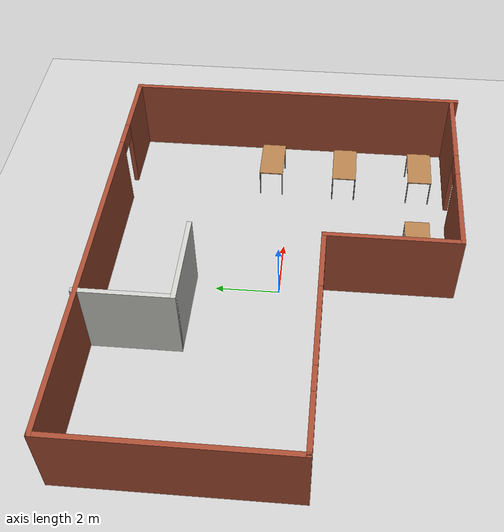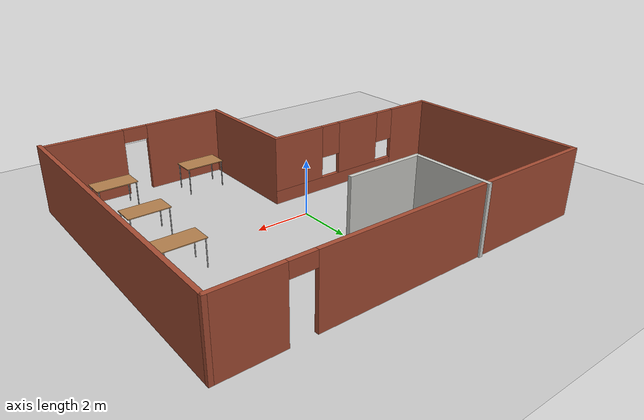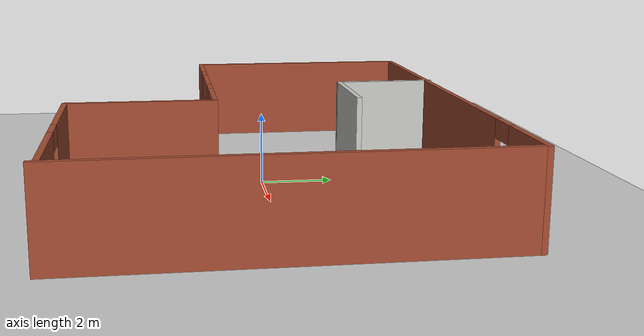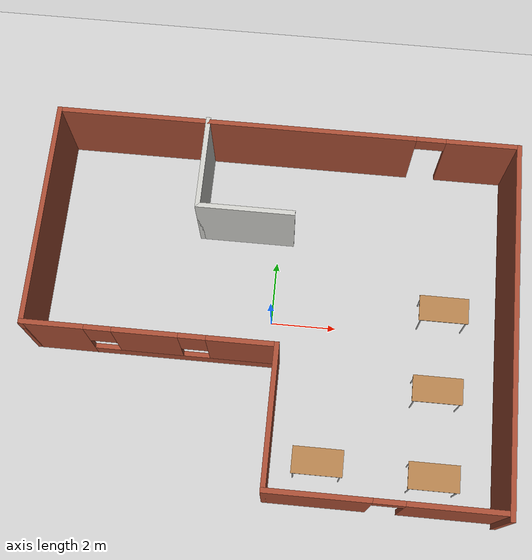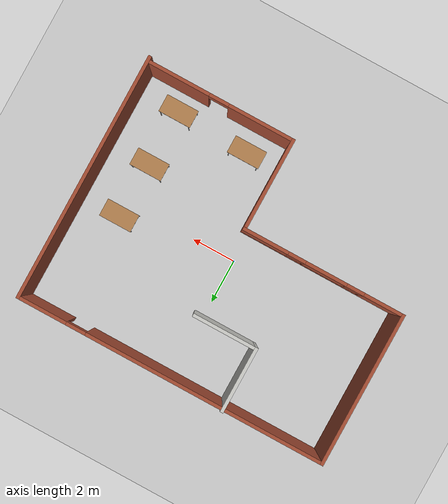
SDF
<sdf version="1.6">
 <world name="default">
  <plugin name="hello" filename="libhello.so"/>
  <light name="sun" type="directional">
   <pose>0 0 10 0 -0 0</pose>
   <diffuse>0.8 0.8 0.8 1</diffuse>
   <specular>0.2 0.2 0.2 1</specular>
   <attenuation>
    <range>1000</range>
    <constant>0.9</constant>
    <linear>0.01</linear>
    <quadratic>0.001</quadratic>
   </attenuation>
   <direction>-0.5 0.1 -0.9</direction>
  </light>
  <model name="ground_plane">
   <static>1</static>
   <link name="link">
    <collision name="collision">
     <geometry><plane><normal>0 0 1</normal><size>100 100</size></plane></geometry>
     <surface><friction><ode><mu>100</mu><mu2>50</mu2></ode></friction></surface>
    </collision>
    <visual name="visual">
     <cast_shadows>0</cast_shadows>
     <geometry><plane><normal>0 0 1</normal><size>100 100</size></plane></geometry>
     <material>
      <script><uri>file://media/materials/scripts/gazebo.material</uri><name>Gazebo/Grey</name></script>
     </material>
    </visual>
   </link>
  </model>
  <gravity>0 0 -9.8</gravity>
  <magnetic_field>6e-06 2.3e-05 -4.2e-05</magnetic_field>
  <atmosphere type="adiabatic"/>
  <physics name="default_physics" default="0" type="ode">
   <max_step_size>0.001</max_step_size>
   <real_time_factor>1</real_time_factor>
   <real_time_update_rate>1000</real_time_update_rate>
  </physics>
  <scene><ambient>0.4 0.4 0.4 1</ambient><background>0.7 0.7 0.7 1</background><shadows>1</shadows></scene>
  <spherical_coordinates>
   <surface_model>EARTH_WGS84</surface_model>
   <latitude_deg>0</latitude_deg>
   <longitude_deg>0</longitude_deg>
   <elevation>0</elevation>
   <heading_deg>0</heading_deg>
  </spherical_coordinates>
  <model name="Untitled">
   <link name="Wall_10">
    <collision name="Wall_10_Collision">
     <geometry><box><size>7 0.15 2.5</size></box></geometry>
     <pose>0 0 1.25 0 -0 0</pose>
    </collision>
    <visual name="Wall_10_Visual">
     <pose>0 0 1.25 0 -0 0</pose>
     <geometry><box><size>7 0.15 2.5</size></box></geometry>
     <material>
      <script><uri>file://media/materials/scripts/gazebo.material</uri><name>Gazebo/Bricks</name></script>
      <ambient>1 1 1 1</ambient>
     </material>
     <meta><layer>0</layer></meta>
    </visual>
    <pose>-7.05 2.09213 0 0 0 -1.5708</pose>
   </link>
   <link name="Wall_11">
    <pose>-3.375 -1.33287 0 0 -0 0</pose>
    <visual name="Wall_11_Visual_0">
     <pose>-2.80947 0 1.25 0 -0 0</pose>
     <geometry><box><size>1.88106 0.15 2.5</size></box></geometry>
     <material>
      <script><uri>file://media/materials/scripts/gazebo.material</uri><name>Gazebo/Bricks</name></script>
      <ambient>1 1 1 1</ambient>
     </material>
     <meta><layer>0</layer></meta>
    </visual>
    <collision name="Wall_11_Collision_0">
     <geometry><box><size>1.88106 0.15 2.5</size></box></geometry>
     <pose>-2.80947 0 1.25 0 -0 0</pose>
    </collision>
    <visual name="Wall_11_Visual_1">
     <pose>0.94053 0 0.25 0 -0 0</pose>
     <geometry><box><size>5.61894 0.15 0.5</size></box></geometry>
     <material>
      <script><uri>file://media/materials/scripts/gazebo.material</uri><name>Gazebo/Bricks</name></script>
      <ambient>1 1 1 1</ambient>
     </material>
     <meta><layer>0</layer></meta>
    </visual>
    <collision name="Wall_11_Collision_1">
     <geometry><box><size>5.61894 0.15 0.5</size></box></geometry>
     <pose>0.94053 0 0.25 0 -0 0</pose>
    </collision>
    <visual name="Wall_11_Visual_2">
     <pose>-0.113678 0 1.5 0 -0 0</pose>
     <geometry><box><size>1.91052 0.15 2</size></box></geometry>
     <material>
      <script><uri>file://media/materials/scripts/gazebo.material</uri><name>Gazebo/Bricks</name></script>
      <ambient>1 1 1 1</ambient>
     </material>
     <meta><layer>0</layer></meta>
    </visual>
    <collision name="Wall_11_Collision_2">
     <geometry><box><size>1.91052 0.15 2</size></box></geometry>
     <pose>-0.113678 0 1.5 0 -0 0</pose>
    </collision>
    <visual name="Wall_11_Visual_3">
     <pose>2.69579 0 1.5 0 -0 0</pose>
     <geometry><box><size>2.10842 0.15 2</size></box></geometry>
     <material>
      <script><uri>file://media/materials/scripts/gazebo.material</uri><name>Gazebo/Bricks</name></script>
      <ambient>1 1 1 1</ambient>
     </material>
     <meta><layer>0</layer></meta>
    </visual>
    <collision name="Wall_11_Collision_3">
     <geometry><box><size>2.10842 0.15 2</size></box></geometry>
     <pose>2.69579 0 1.5 0 -0 0</pose>
    </collision>
    <visual name="Wall_11_Visual_4">
     <pose>-1.46894 0 1.9 0 -0 0</pose>
     <geometry><box><size>0.8 0.15 1.2</size></box></geometry>
     <material>
      <script><uri>file://media/materials/scripts/gazebo.material</uri><name>Gazebo/Bricks</name></script>
      <ambient>1 1 1 1</ambient>
     </material>
     <meta><layer>0</layer></meta>
    </visual>
    <collision name="Wall_11_Collision_4">
     <geometry><box><size>0.8 0.15 1.2</size></box></geometry>
     <pose>-1.46894 0 1.9 0 -0 0</pose>
    </collision>
    <visual name="Wall_11_Visual_5">
     <pose>1.24158 0 1.9 0 -0 0</pose>
     <geometry><box><size>0.8 0.15 1.2</size></box></geometry>
     <material>
      <script><uri>file://media/materials/scripts/gazebo.material</uri><name>Gazebo/Bricks</name></script>
      <ambient>1 1 1 1</ambient>
     </material>
     <meta><layer>0</layer></meta>
    </visual>
    <collision name="Wall_11_Collision_5">
     <geometry><box><size>0.8 0.15 1.2</size></box></geometry>
     <pose>1.24158 0 1.9 0 -0 0</pose>
    </collision>
   </link>
   <link name="Wall_12">
    <collision name="Wall_12_Collision">
     <geometry><box><size>4.25 0.15 2.5</size></box></geometry>
     <pose>0 0 1.25 0 -0 0</pose>
    </collision>
    <visual name="Wall_12_Visual">
     <pose>0 0 1.25 0 -0 0</pose>
     <geometry><box><size>4.25 0.15 2.5</size></box></geometry>
     <material>
      <script><uri>file://media/materials/scripts/gazebo.material</uri><name>Gazebo/Bricks</name></script>
      <ambient>1 1 1 1</ambient>
     </material>
     <meta><layer>0</layer></meta>
    </visual>
    <pose>0.3 -3.38287 0 0 0 -1.5708</pose>
   </link>
   <link name="Wall_13">
    <pose>3.6 -5.43287 0 0 -0 0</pose>
    <visual name="Wall_13_Visual_0">
     <pose>-1.84618 0 1.25 0 -0 0</pose>
     <geometry><box><size>3.05764 0.15 2.5</size></box></geometry>
     <material>
      <script><uri>file://media/materials/scripts/gazebo.material</uri><name>Gazebo/Bricks</name></script>
      <ambient>1 1 1 1</ambient>
     </material>
     <meta><layer>0</layer></meta>
    </visual>
    <collision name="Wall_13_Collision_0">
     <geometry><box><size>3.05764 0.15 2.5</size></box></geometry>
     <pose>-1.84618 0 1.25 0 -0 0</pose>
    </collision>
    <visual name="Wall_13_Visual_1">
     <pose>1.97882 0 1.25 0 -0 0</pose>
     <geometry><box><size>2.79236 0.15 2.5</size></box></geometry>
     <material>
      <script><uri>file://media/materials/scripts/gazebo.material</uri><name>Gazebo/Bricks</name></script>
      <ambient>1 1 1 1</ambient>
     </material>
     <meta><layer>0</layer></meta>
    </visual>
    <collision name="Wall_13_Collision_1">
     <geometry><box><size>2.79236 0.15 2.5</size></box></geometry>
     <pose>1.97882 0 1.25 0 -0 0</pose>
    </collision>
    <visual name="Wall_13_Visual_2">
     <pose>0.132642 0 2.25 0 -0 0</pose>
     <geometry><box><size>0.9 0.15 0.5</size></box></geometry>
     <material>
      <script><uri>file://media/materials/scripts/gazebo.material</uri><name>Gazebo/Bricks</name></script>
      <ambient>1 1 1 1</ambient>
     </material>
     <meta><layer>0</layer></meta>
    </visual>
    <collision name="Wall_13_Collision_2">
     <geometry><box><size>0.9 0.15 0.5</size></box></geometry>
     <pose>0.132642 0 2.25 0 -0 0</pose>
    </collision>
   </link>
   <link name="Wall_15">
    <collision name="Wall_15_Collision">
     <geometry><box><size>3 0.15 2.5</size></box></geometry>
     <pose>0 0 1.25 0 -0 0</pose>
    </collision>
    <visual name="Wall_15_Visual">
     <pose>0 0 1.25 0 -0 0</pose>
     <geometry><box><size>3 0.15 2.5</size></box></geometry>
     <material>
      <script><uri>file://media/materials/scripts/gazebo.material</uri><name>Gazebo/CeilingTiled</name></script>
      <ambient>1 1 1 1</ambient>
     </material>
     <meta><layer>0</layer></meta>
    </visual>
    <pose>-2.45706 4.15787 0 0 0 -1.5708</pose>
   </link>
   <link name="Wall_16">
    <collision name="Wall_16_Collision">
     <geometry><box><size>3 0.15 2.5</size></box></geometry>
     <pose>0 0 1.25 0 -0 0</pose>
    </collision>
    <visual name="Wall_16_Visual">
     <pose>0 0 1.25 0 -0 0</pose>
     <geometry><box><size>3 0.15 2.5</size></box></geometry>
     <material>
      <script><uri>file://media/materials/scripts/gazebo.material</uri><name>Gazebo/CeilingTiled</name></script>
      <ambient>1 1 1 1</ambient>
     </material>
     <meta><layer>0</layer></meta>
    </visual>
    <pose>-1.03206 2.73287 0 0 -0 0</pose>
   </link>
   <link name="Wall_8">
    <collision name="Wall_8_Collision">
     <geometry><box><size>11.25 0.15 2.5</size></box></geometry>
     <pose>0 0 1.25 0 -0 0</pose>
    </collision>
    <visual name="Wall_8_Visual">
     <pose>0 0 1.25 0 -0 0</pose>
     <geometry><box><size>11.25 0.15 2.5</size></box></geometry>
     <material>
      <script><uri>file://media/materials/scripts/gazebo.material</uri><name>Gazebo/Bricks</name></script>
      <ambient>1 1 1 1</ambient>
     </material>
     <meta><layer>0</layer></meta>
    </visual>
    <pose>7.05 -0.032869 0 0 -0 1.5708</pose>
   </link>
   <link name="Wall_9">
    <pose>0 5.51713 0 0 -0 3.14159</pose>
    <visual name="Wall_9_Visual_0">
     <pose>-5.97747 0 1.25 0 -0 0</pose>
     <geometry><box><size>2.29507 0.15 2.5</size></box></geometry>
     <material>
      <script><uri>file://media/materials/scripts/gazebo.material</uri><name>Gazebo/Bricks</name></script>
      <ambient>1 1 1 1</ambient>
     </material>
     <meta><layer>0</layer></meta>
    </visual>
    <collision name="Wall_9_Collision_0">
     <geometry><box><size>2.29507 0.15 2.5</size></box></geometry>
     <pose>-5.97747 0 1.25 0 -0 0</pose>
    </collision>
    <visual name="Wall_9_Visual_1">
     <pose>1.59753 0 1.25 0 -0 0</pose>
     <geometry><box><size>11.0549 0.15 2.5</size></box></geometry>
     <material>
      <script><uri>file://media/materials/scripts/gazebo.material</uri><name>Gazebo/Bricks</name></script>
      <ambient>1 1 1 1</ambient>
     </material>
     <meta><layer>0</layer></meta>
    </visual>
    <collision name="Wall_9_Collision_1">
     <geometry><box><size>11.0549 0.15 2.5</size></box></geometry>
     <pose>1.59753 0 1.25 0 -0 0</pose>
    </collision>
    <visual name="Wall_9_Visual_2">
     <pose>-4.37993 0 2.25 0 -0 0</pose>
     <geometry><box><size>0.9 0.15 0.5</size></box></geometry>
     <material>
      <script><uri>file://media/materials/scripts/gazebo.material</uri><name>Gazebo/Bricks</name></script>
      <ambient>1 1 1 1</ambient>
     </material>
     <meta><layer>0</layer></meta>
    </visual>
    <collision name="Wall_9_Collision_2">
     <geometry><box><size>0.9 0.15 0.5</size></box></geometry>
     <pose>-4.37993 0 2.25 0 -0 0</pose>
    </collision>
   </link>
   <static>1</static>
  </model>
  <model name="table">
   <static>1</static>
   <link name="link">
    <collision name="surface">
     <pose>0 0 1 0 -0 0</pose>
     <geometry><box><size>1.5 0.8 0.03</size></box></geometry>
     <surface><friction><ode><mu>0.6</mu><mu2>0.6</mu2></ode></friction></surface>
    </collision>
    <visual name="visual1">
     <pose>0 0 1 0 -0 0</pose>
     <geometry><box><size>1.5 0.8 0.03</size></box></geometry>
     <material>
      <script><uri>file://media/materials/scripts/gazebo.material</uri><name>Gazebo/Wood</name></script>
     </material>
    </visual>
    <collision name="front_left_leg">
     <pose>0.68 0.38 0.5 0 -0 0</pose>
     <geometry><cylinder><radius>0.02</radius><length>1</length></cylinder></geometry>
    </collision>
    <visual name="front_left_leg">
     <pose>0.68 0.38 0.5 0 -0 0</pose>
     <geometry><cylinder><radius>0.02</radius><length>1</length></cylinder></geometry>
     <material>
      <script><uri>file://media/materials/scripts/gazebo.material</uri><name>Gazebo/Grey</name></script>
     </material>
    </visual>
    <collision name="front_right_leg">
     <pose>0.68 -0.38 0.5 0 -0 0</pose>
     <geometry><cylinder><radius>0.02</radius><length>1</length></cylinder></geometry>
    </collision>
    <visual name="front_right_leg">
     <pose>0.68 -0.38 0.5 0 -0 0</pose>
     <geometry><cylinder><radius>0.02</radius><length>1</length></cylinder></geometry>
     <material>
      <script><uri>file://media/materials/scripts/gazebo.material</uri><name>Gazebo/Grey</name></script>
     </material>
    </visual>
    <collision name="back_right_leg">
     <pose>-0.68 -0.38 0.5 0 -0 0</pose>
     <geometry><cylinder><radius>0.02</radius><length>1</length></cylinder></geometry>
    </collision>
    <visual name="back_right_leg">
     <pose>-0.68 -0.38 0.5 0 -0 0</pose>
     <geometry><cylinder><radius>0.02</radius><length>1</length></cylinder></geometry>
     <material>
      <script><uri>file://media/materials/scripts/gazebo.material</uri><name>Gazebo/Grey</name></script>
     </material>
    </visual>
    <collision name="back_left_leg">
     <pose>-0.68 0.38 0.5 0 -0 0</pose>
     <geometry><cylinder><radius>0.02</radius><length>1</length></cylinder></geometry>
    </collision>
    <visual name="back_left_leg">
     <pose>-0.68 0.38 0.5 0 -0 0</pose>
     <geometry><cylinder><radius>0.02</radius><length>1</length></cylinder></geometry>
     <material>
      <script><uri>file://media/materials/scripts/gazebo.material</uri><name>Gazebo/Grey</name></script>
     </material>
    </visual>
   </link>
   <pose>1.75544 -4.30518 0 0 -0 0</pose>
  </model>
  <model name="table_0">
   <static>1</static>
   <link name="link">
    <collision name="surface">
     <pose>0 0 1 0 -0 0</pose>
     <geometry><box><size>1.5 0.8 0.03</size></box></geometry>
     <surface><friction><ode><mu>0.6</mu><mu2>0.6</mu2></ode></friction></surface>
    </collision>
    <visual name="visual1">
     <pose>0 0 1 0 -0 0</pose>
     <geometry><box><size>1.5 0.8 0.03</size></box></geometry>
     <material>
      <script><uri>file://media/materials/scripts/gazebo.material</uri><name>Gazebo/Wood</name></script>
     </material>
    </visual>
    <collision name="front_left_leg">
     <pose>0.68 0.38 0.5 0 -0 0</pose>
     <geometry><cylinder><radius>0.02</radius><length>1</length></cylinder></geometry>
    </collision>
    <visual name="front_left_leg">
     <pose>0.68 0.38 0.5 0 -0 0</pose>
     <geometry><cylinder><radius>0.02</radius><length>1</length></cylinder></geometry>
     <material>
      <script><uri>file://media/materials/scripts/gazebo.material</uri><name>Gazebo/Grey</name></script>
     </material>
    </visual>
    <collision name="front_right_leg">
     <pose>0.68 -0.38 0.5 0 -0 0</pose>
     <geometry><cylinder><radius>0.02</radius><length>1</length></cylinder></geometry>
    </collision>
    <visual name="front_right_leg">
     <pose>0.68 -0.38 0.5 0 -0 0</pose>
     <geometry><cylinder><radius>0.02</radius><length>1</length></cylinder></geometry>
     <material>
      <script><uri>file://media/materials/scripts/gazebo.material</uri><name>Gazebo/Grey</name></script>
     </material>
    </visual>
    <collision name="back_right_leg">
     <pose>-0.68 -0.38 0.5 0 -0 0</pose>
     <geometry><cylinder><radius>0.02</radius><length>1</length></cylinder></geometry>
    </collision>
    <visual name="back_right_leg">
     <pose>-0.68 -0.38 0.5 0 -0 0</pose>
     <geometry><cylinder><radius>0.02</radius><length>1</length></cylinder></geometry>
     <material>
      <script><uri>file://media/materials/scripts/gazebo.material</uri><name>Gazebo/Grey</name></script>
     </material>
    </visual>
    <collision name="back_left_leg">
     <pose>-0.68 0.38 0.5 0 -0 0</pose>
     <geometry><cylinder><radius>0.02</radius><length>1</length></cylinder></geometry>
    </collision>
    <visual name="back_left_leg">
     <pose>-0.68 0.38 0.5 0 -0 0</pose>
     <geometry><cylinder><radius>0.02</radius><length>1</length></cylinder></geometry>
     <material>
      <script><uri>file://media/materials/scripts/gazebo.material</uri><name>Gazebo/Grey</name></script>
     </material>
    </visual>
   </link>
   <pose>5.13006 -4.44104 0 0 -0 0</pose>
  </model>
  <model name="table_1">
   <static>1</static>
   <link name="link">
    <collision name="surface">
     <pose>0 0 1 0 -0 0</pose>
     <geometry><box><size>1.5 0.8 0.03</size></box></geometry>
     <surface><friction><ode><mu>0.6</mu><mu2>0.6</mu2></ode></friction></surface>
    </collision>
    <visual name="visual1">
     <pose>0 0 1 0 -0 0</pose>
     <geometry><box><size>1.5 0.8 0.03</size></box></geometry>
     <material>
      <script><uri>file://media/materials/scripts/gazebo.material</uri><name>Gazebo/Wood</name></script>
     </material>
    </visual>
    <collision name="front_left_leg">
     <pose>0.68 0.38 0.5 0 -0 0</pose>
     <geometry><cylinder><radius>0.02</radius><length>1</length></cylinder></geometry>
    </collision>
    <visual name="front_left_leg">
     <pose>0.68 0.38 0.5 0 -0 0</pose>
     <geometry><cylinder><radius>0.02</radius><length>1</length></cylinder></geometry>
     <material>
      <script><uri>file://media/materials/scripts/gazebo.material</uri><name>Gazebo/Grey</name></script>
     </material>
    </visual>
    <collision name="front_right_leg">
     <pose>0.68 -0.38 0.5 0 -0 0</pose>
     <geometry><cylinder><radius>0.02</radius><length>1</length></cylinder></geometry>
    </collision>
    <visual name="front_right_leg">
     <pose>0.68 -0.38 0.5 0 -0 0</pose>
     <geometry><cylinder><radius>0.02</radius><length>1</length></cylinder></geometry>
     <material>
      <script><uri>file://media/materials/scripts/gazebo.material</uri><name>Gazebo/Grey</name></script>
     </material>
    </visual>
    <collision name="back_right_leg">
     <pose>-0.68 -0.38 0.5 0 -0 0</pose>
     <geometry><cylinder><radius>0.02</radius><length>1</length></cylinder></geometry>
    </collision>
    <visual name="back_right_leg">
     <pose>-0.68 -0.38 0.5 0 -0 0</pose>
     <geometry><cylinder><radius>0.02</radius><length>1</length></cylinder></geometry>
     <material>
      <script><uri>file://media/materials/scripts/gazebo.material</uri><name>Gazebo/Grey</name></script>
     </material>
    </visual>
    <collision name="back_left_leg">
     <pose>-0.68 0.38 0.5 0 -0 0</pose>
     <geometry><cylinder><radius>0.02</radius><length>1</length></cylinder></geometry>
    </collision>
    <visual name="back_left_leg">
     <pose>-0.68 0.38 0.5 0 -0 0</pose>
     <geometry><cylinder><radius>0.02</radius><length>1</length></cylinder></geometry>
     <material>
      <script><uri>file://media/materials/scripts/gazebo.material</uri><name>Gazebo/Grey</name></script>
     </material>
    </visual>
   </link>
   <pose>5.12662 -1.87052 0 0 -0 0</pose>
  </model>
  <model name="table_2">
   <static>1</static>
   <link name="link">
    <collision name="surface">
     <pose>0 0 1 0 -0 0</pose>
     <geometry><box><size>1.5 0.8 0.03</size></box></geometry>
     <surface><friction><ode><mu>0.6</mu><mu2>0.6</mu2></ode></friction></surface>
    </collision>
    <visual name="visual1">
     <pose>0 0 1 0 -0 0</pose>
     <geometry><box><size>1.5 0.8 0.03</size></box></geometry>
     <material>
      <script><uri>file://media/materials/scripts/gazebo.material</uri><name>Gazebo/Wood</name></script>
     </material>
    </visual>
    <collision name="front_left_leg">
     <pose>0.68 0.38 0.5 0 -0 0</pose>
     <geometry><cylinder><radius>0.02</radius><length>1</length></cylinder></geometry>
    </collision>
    <visual name="front_left_leg">
     <pose>0.68 0.38 0.5 0 -0 0</pose>
     <geometry><cylinder><radius>0.02</radius><length>1</length></cylinder></geometry>
     <material>
      <script><uri>file://media/materials/scripts/gazebo.material</uri><name>Gazebo/Grey</name></script>
     </material>
    </visual>
    <collision name="front_right_leg">
     <pose>0.68 -0.38 0.5 0 -0 0</pose>
     <geometry><cylinder><radius>0.02</radius><length>1</length></cylinder></geometry>
    </collision>
    <visual name="front_right_leg">
     <pose>0.68 -0.38 0.5 0 -0 0</pose>
     <geometry><cylinder><radius>0.02</radius><length>1</length></cylinder></geometry>
     <material>
      <script><uri>file://media/materials/scripts/gazebo.material</uri><name>Gazebo/Grey</name></script>
     </material>
    </visual>
    <collision name="back_right_leg">
     <pose>-0.68 -0.38 0.5 0 -0 0</pose>
     <geometry><cylinder><radius>0.02</radius><length>1</length></cylinder></geometry>
    </collision>
    <visual name="back_right_leg">
     <pose>-0.68 -0.38 0.5 0 -0 0</pose>
     <geometry><cylinder><radius>0.02</radius><length>1</length></cylinder></geometry>
     <material>
      <script><uri>file://media/materials/scripts/gazebo.material</uri><name>Gazebo/Grey</name></script>
     </material>
    </visual>
    <collision name="back_left_leg">
     <pose>-0.68 0.38 0.5 0 -0 0</pose>
     <geometry><cylinder><radius>0.02</radius><length>1</length></cylinder></geometry>
    </collision>
    <visual name="back_left_leg">
     <pose>-0.68 0.38 0.5 0 -0 0</pose>
     <geometry><cylinder><radius>0.02</radius><length>1</length></cylinder></geometry>
     <material>
      <script><uri>file://media/materials/scripts/gazebo.material</uri><name>Gazebo/Grey</name></script>
     </material>
    </visual>
   </link>
   <pose>5.21138 0.639199 0 0 -0 0</pose>
  </model>
 </world>
</sdf>
